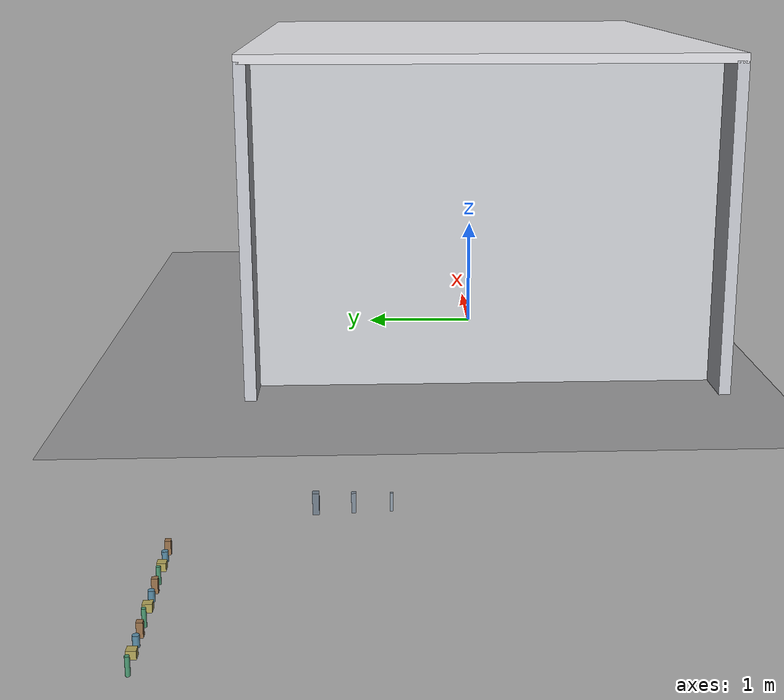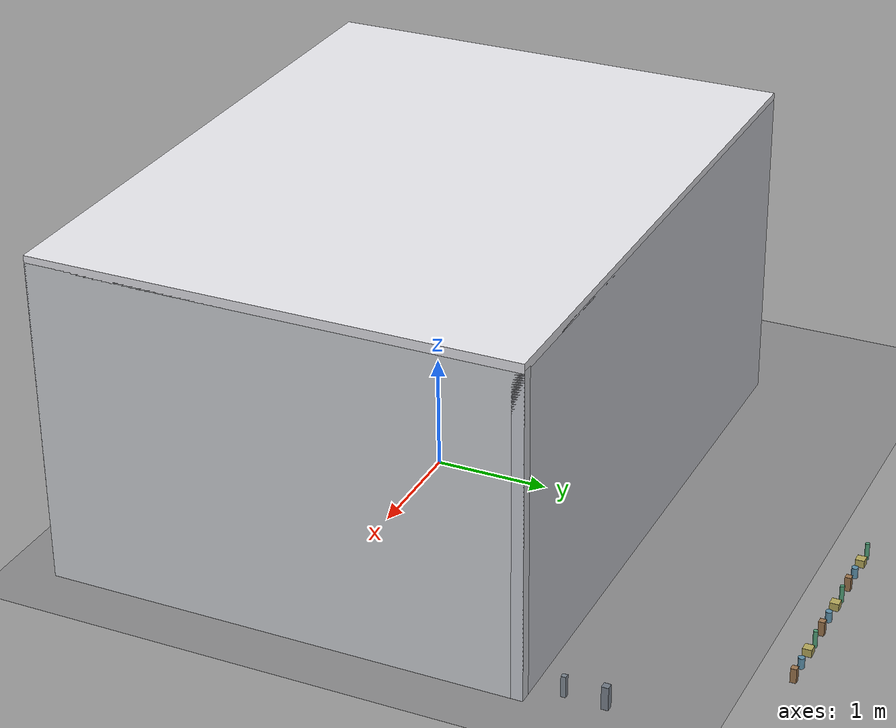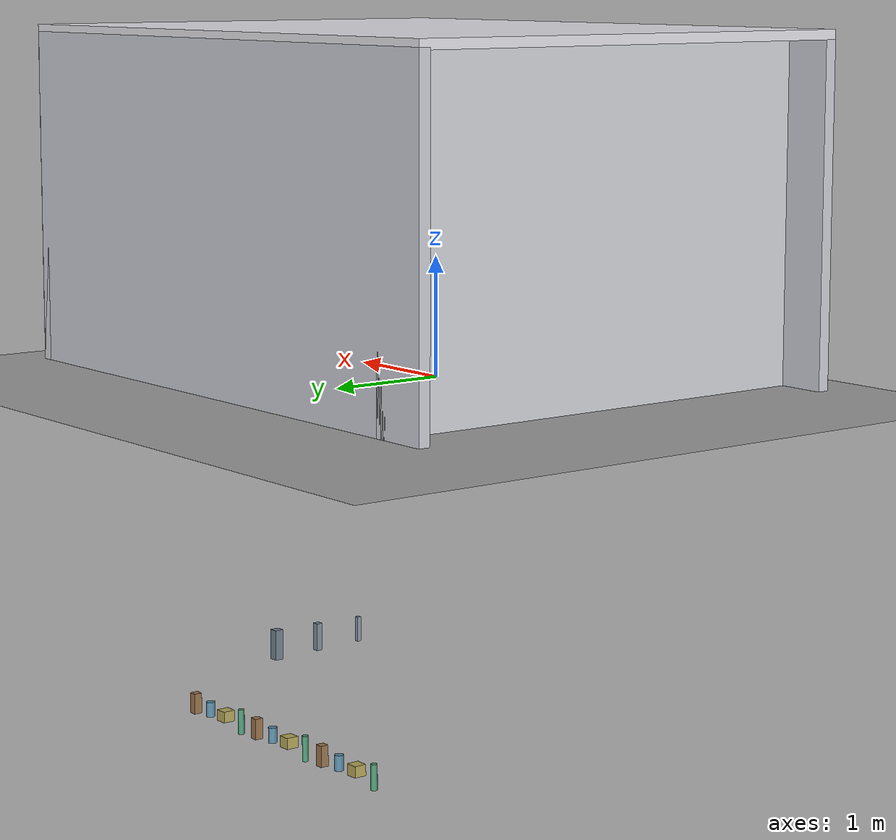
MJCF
<mujoco model="fumehood_v22">
  <compiler angle="radian" autolimits="true" boundmass="0" balanceinertia="true"/>
  <option impratio="10" gravity="0 0 -9.8" integrator="implicitfast" cone="elliptic" jacobian="sparse" noslip_iterations="4">
    <flag multiccd="enable" contact="enable" warmstart="enable"/>
  </option>
  <size njmax="8000" nconmax="8000"/>
  <visual>
    <global offwidth="1280" offheight="720"/>
    <map znear="0.001"/>
    <headlight ambient="0.5 0.5 0.5" diffuse="0.65 0.65 0.65"/>
  </visual>
  <asset>
    <texture name="benchtex" type="2d" builtin="flat" rgb1="0.85 0.86 0.88" width="32" height="32"/>
    <material name="bench" texture="benchtex" reflectance="0.1"/>
    <texture name="floortex" type="2d" builtin="checker" rgb1="0.46 0.46 0.48" rgb2="0.40 0.40 0.42" width="300" height="300"/>
    <material name="floormat" texture="floortex" texrepeat="10 10" reflectance="0.05"/>
  </asset>
  <default>
    <default class="hood">
      <geom contype="8" conaffinity="15" group="0" friction="0.9 0.9 0.001"
            solref="0.02 1" solimp="0.998 0.998 0.001" density="700" rgba="0.92 0.93 0.94 1"/>
    </default>
  </default>
  <worldbody>
    <light name="l_key" pos="0.4 0.5 2.6" dir="0 0 -1" diffuse="0.95 0.95 0.95"/>
    <light name="l_fill" pos="-0.6 -0.7 2.1" dir="0.3 0.3 -1" diffuse="0.5 0.5 0.5"/>
    <light name="l_hood" pos="0.97 0 1.58" dir="0 0 -1" diffuse="0.6 0.6 0.6"/>
    <geom name="floor" type="plane" size="5 5 0.1" pos="0 0 0" material="floormat" contype="8" conaffinity="15"/>
    <geom name="room_wall_back"  class="hood" type="box" pos="-2.0 0 1.4" size="0.05 2.05 1.4" rgba="0.82 0.83 0.85 1"/>
    <geom name="room_wall_front" class="hood" type="box" pos="2.8 0 1.4"  size="0.05 2.05 1.4" rgba="0.82 0.83 0.85 1"/>
    <geom name="room_wall_left"  class="hood" type="box" pos="0.2 2.0 1.4"  size="2.65 0.05 1.4" rgba="0.80 0.81 0.84 1"/>
    <geom name="room_wall_right" class="hood" type="box" pos="0.2 -2.0 1.4" size="2.65 0.05 1.4" rgba="0.80 0.81 0.84 1"/>
    <geom name="room_ceiling"    class="hood" type="box" pos="0.2 0 2.82"  size="2.65 2.05 0.04" rgba="0.90 0.90 0.92 1"/>
    <geom name="bench_top"  class="hood" type="box" pos="0.97 0 0.7" size="0.45 0.68 0.02" material="bench"/>
    <geom name="bench_body" class="hood" type="box" pos="0.97 0 0.35" size="0.42 0.65 0.33" rgba="0.80 0.81 0.83 1"/>
    <geom name="hood_side_l" class="hood" type="box" pos="0.97 0.592 1.125" size="0.39 0.012 0.405" rgba="0.90 0.91 0.92 1"/>
    <geom name="hood_side_r" class="hood" type="box" pos="0.97 -0.592 1.125" size="0.39 0.012 0.405" rgba="0.90 0.91 0.92 1"/>
    <geom name="hood_back"  class="hood" type="box" pos="1.372 0 1.125" size="0.012 0.604 0.405" rgba="0.88 0.89 0.90 1"/>
    <geom name="hood_top"   class="hood" type="box" pos="0.97 0 1.545" size="0.402 0.604 0.015"/>
    <geom name="hood_frame_l" class="hood" type="box" pos="0.58 0.592 1.125" size="0.02 0.02 0.405"/>
    <geom name="hood_frame_r" class="hood" type="box" pos="0.58 -0.592 1.125" size="0.02 0.02 0.405"/>
    <body name="sash" mocap="true" pos="0.58 0 1.47">
      <geom name="sash_g" class="hood" type="box" size="0.015 0.604 0.025" rgba="0.62 0.64 0.66 1"/>
    </body>
    <body name="jamb_l" mocap="true" pos="0.58 0.35 0.92">
      <geom name="jamb_l_g" class="hood" type="box" size="0.012 0.18 0.20" rgba="0.88 0.89 0.90 1"/>
    </body>
    <body name="jamb_r" mocap="true" pos="0.58 -0.35 0.92">
      <geom name="jamb_r_g" class="hood" type="box" size="0.012 0.18 0.20" rgba="0.88 0.89 0.90 1"/>
    </body>
    <!-- place target for the pick-and-place variant: a shallow tray the arm sets
         the object down on. Mocap so the sampler can position it per episode. -->
    <body name="place_tray" mocap="true" pos="0.72 -0.46 0.728">
      <geom name="place_tray_g" class="hood" type="box" size="0.09 0.09 0.008" rgba="0.25 0.45 0.75 1"/>
    </body>
    <body name="protr_s" mocap="true" pos="0 0.8 -2.0">
      <geom name="protr_s_g" class="hood" type="box" size="0.0175 0.0175 0.10" rgba="0.55 0.6 0.65 1"/>
    </body>
    <body name="protr_m" mocap="true" pos="0 1.2 -2.0">
      <geom name="protr_m_g" class="hood" type="box" size="0.025 0.025 0.11" rgba="0.5 0.55 0.6 1"/>
    </body>
    <body name="protr_l" mocap="true" pos="0 1.6 -2.0">
      <geom name="protr_l_g" class="hood" type="box" size="0.035 0.035 0.12" rgba="0.45 0.5 0.55 1"/>
    </body>
    <body name="cl_0" mocap="true" pos="-1.0 3.0 -2.0">
      <geom name="cl_0_g" class="hood" type="box" size="0.030 0.030 0.075" rgba="0.60 0.45 0.30 1"/>
    </body>
    <body name="cl_1" mocap="true" pos="-1.2 3.0 -2.0">
      <geom name="cl_1_g" class="hood" type="cylinder" size="0.032 0.055" rgba="0.35 0.55 0.65 1"/>
    </body>
    <body name="cl_2" mocap="true" pos="-1.4 3.0 -2.0">
      <geom name="cl_2_g" class="hood" type="box" size="0.045 0.045 0.040" rgba="0.70 0.65 0.35 1"/>
    </body>
    <body name="cl_3" mocap="true" pos="-1.6 3.0 -2.0">
      <geom name="cl_3_g" class="hood" type="cylinder" size="0.022 0.090" rgba="0.30 0.60 0.45 1"/>
    </body>
    <body name="cl_4" mocap="true" pos="-1.8 3.0 -2.0">
      <geom name="cl_4_g" class="hood" type="box" size="0.030 0.030 0.075" rgba="0.60 0.45 0.30 1"/>
    </body>
    <body name="cl_5" mocap="true" pos="-2.0 3.0 -2.0">
      <geom name="cl_5_g" class="hood" type="cylinder" size="0.032 0.055" rgba="0.35 0.55 0.65 1"/>
    </body>
    <body name="cl_6" mocap="true" pos="-2.2 3.0 -2.0">
      <geom name="cl_6_g" class="hood" type="box" size="0.045 0.045 0.040" rgba="0.70 0.65 0.35 1"/>
    </body>
    <body name="cl_7" mocap="true" pos="-2.4 3.0 -2.0">
      <geom name="cl_7_g" class="hood" type="cylinder" size="0.022 0.090" rgba="0.30 0.60 0.45 1"/>
    </body>
    <body name="cl_8" mocap="true" pos="-2.6 3.0 -2.0">
      <geom name="cl_8_g" class="hood" type="box" size="0.030 0.030 0.075" rgba="0.60 0.45 0.30 1"/>
    </body>
    <body name="cl_9" mocap="true" pos="-2.8 3.0 -2.0">
      <geom name="cl_9_g" class="hood" type="cylinder" size="0.032 0.055" rgba="0.35 0.55 0.65 1"/>
    </body>
    <body name="cl_10" mocap="true" pos="-3.0 3.0 -2.0">
      <geom name="cl_10_g" class="hood" type="box" size="0.045 0.045 0.040" rgba="0.70 0.65 0.35 1"/>
    </body>
    <body name="cl_11" mocap="true" pos="-3.2 3.0 -2.0">
      <geom name="cl_11_g" class="hood" type="cylinder" size="0.022 0.090" rgba="0.30 0.60 0.45 1"/>
    </body>
  </worldbody>
</mujoco>
